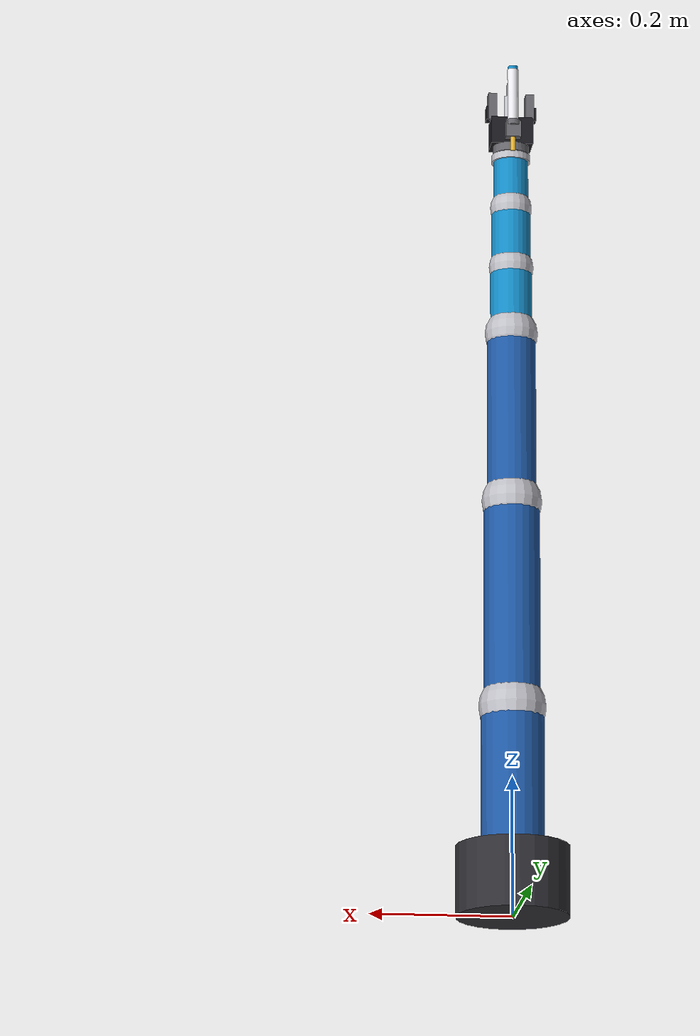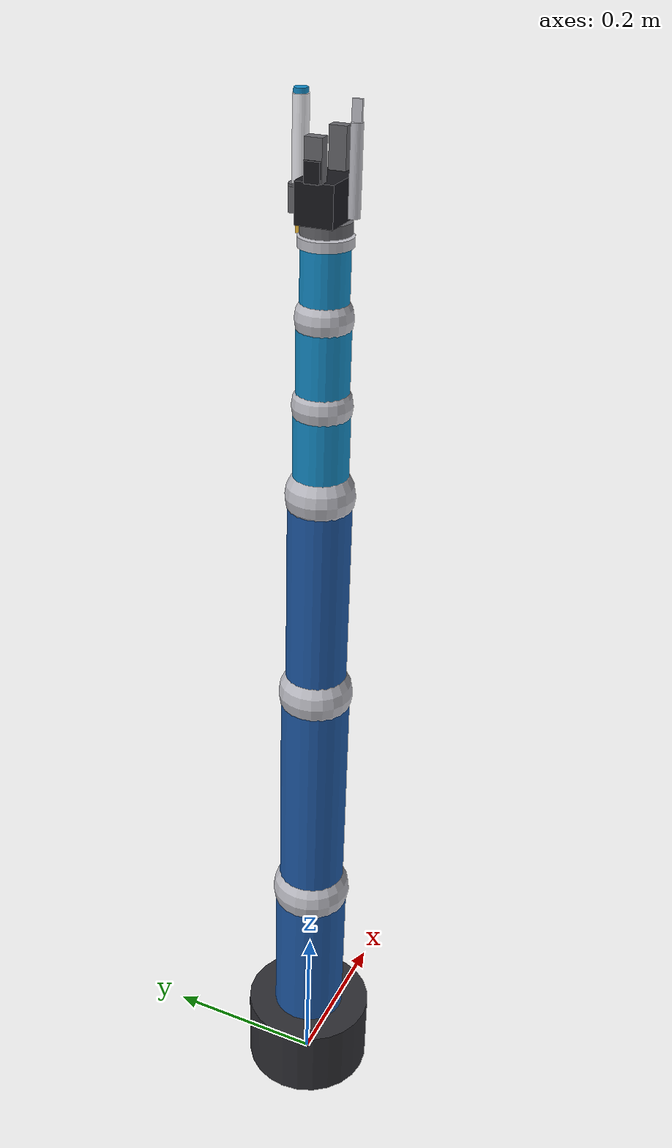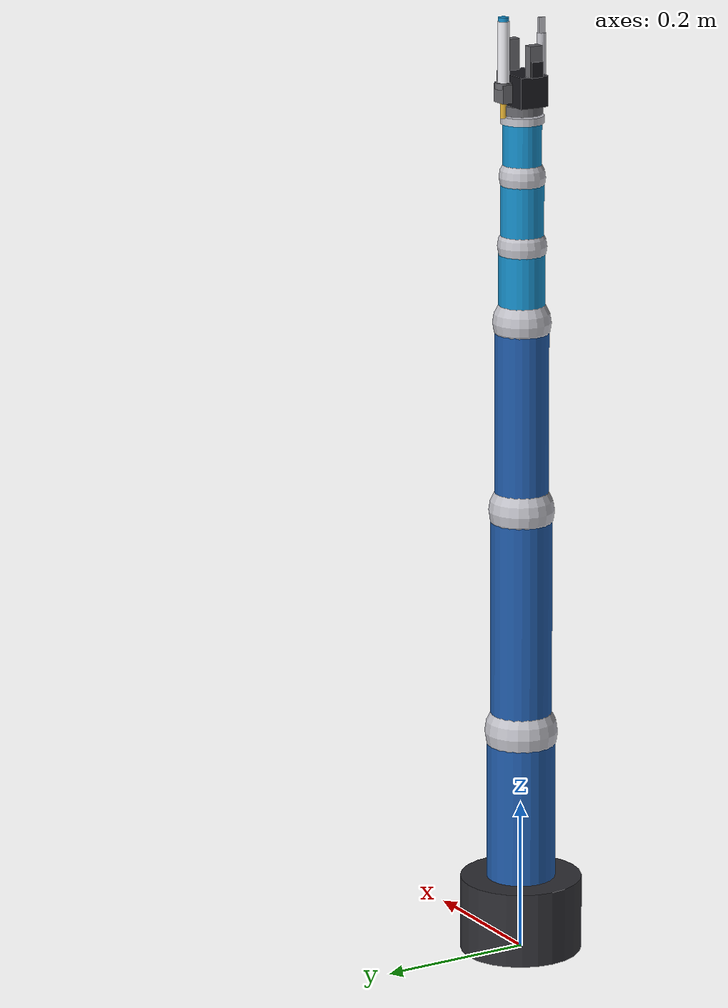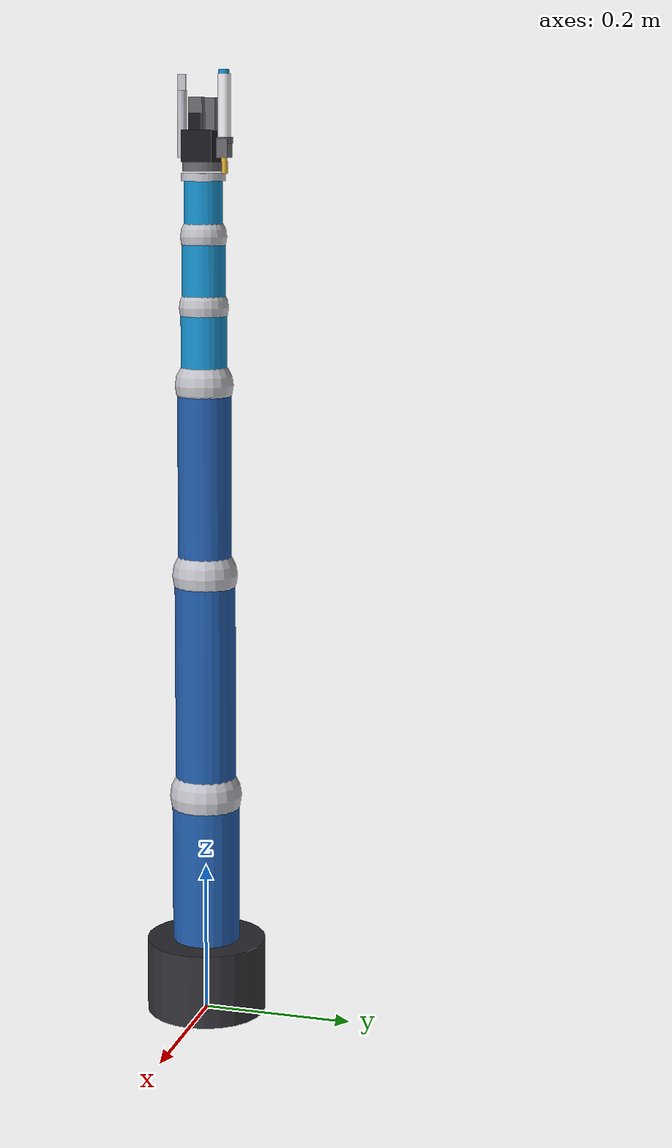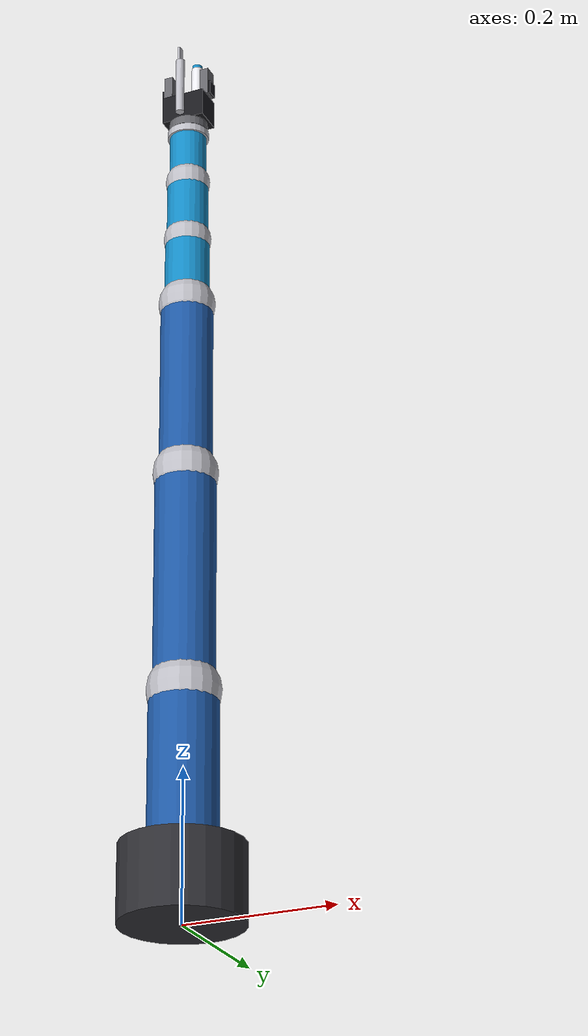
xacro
<?xml version="1.0"?>
<robot xmlns:xacro="http://www.ros.org/wiki/xacro" name="cobot_6dof">

  <xacro:include filename="$(find cobot_description)/urdf/materials.xacro"/>

  <!-- ============================================================
       PROPERTIES — DH-derived link lengths and geometry
       ============================================================ -->
  <xacro:property name="PI" value="3.14159265358979"/>

  <!-- Link lengths (metres) -->
  <xacro:property name="base_height"     value="0.100"/>
  <xacro:property name="base_radius"     value="0.080"/>
  <xacro:property name="link1_length"    value="0.200"/>  <!-- Shoulder -->
  <xacro:property name="link1_radius"    value="0.045"/>
  <xacro:property name="link2_length"    value="0.300"/>  <!-- Upper arm -->
  <xacro:property name="link2_radius"    value="0.040"/>
  <xacro:property name="link3_length"    value="0.250"/>  <!-- Forearm -->
  <xacro:property name="link3_radius"    value="0.035"/>
  <xacro:property name="link4_length"    value="0.100"/>  <!-- Wrist 1 -->
  <xacro:property name="link4_radius"    value="0.030"/>
  <xacro:property name="link5_length"    value="0.090"/>  <!-- Wrist 2 -->
  <xacro:property name="link5_radius"    value="0.028"/>
  <xacro:property name="link6_length"    value="0.070"/>  <!-- Tool flange -->
  <xacro:property name="link6_radius"    value="0.025"/>

  <!-- Joint limits (radians) -->
  <xacro:property name="j1_limit"  value="3.14159"/>   <!-- ±180° base rotation -->
  <xacro:property name="j2_limit"  value="2.35619"/>   <!-- ±135° shoulder -->
  <xacro:property name="j3_limit"  value="2.61799"/>   <!-- ±150° elbow -->
  <xacro:property name="j4_limit"  value="3.14159"/>   <!-- ±180° wrist roll -->
  <xacro:property name="j5_limit"  value="2.09440"/>   <!-- ±120° wrist pitch -->
  <xacro:property name="j6_limit"  value="3.14159"/>   <!-- ±180° tool rotation -->

  <!-- Effort and velocity limits -->
  <xacro:property name="j1_effort"   value="150.0"/>
  <xacro:property name="j2_effort"   value="150.0"/>
  <xacro:property name="j3_effort"   value="100.0"/>
  <xacro:property name="j4_effort"   value="50.0"/>
  <xacro:property name="j5_effort"   value="50.0"/>
  <xacro:property name="j6_effort"   value="30.0"/>
  <xacro:property name="base_vel"    value="1.57"/>    <!-- rad/s -->
  <xacro:property name="wrist_vel"   value="3.14"/>

  <!-- ============================================================
       LINK MACRO — parametric hollow cylindrical link
       ============================================================ -->
  <xacro:macro name="cobot_link" params="name length radius mass color">
    <link name="${name}">
      <visual>
        <origin xyz="0 0 ${length/2}" rpy="0 0 0"/>
        <geometry>
          <cylinder length="${length}" radius="${radius}"/>
        </geometry>
        <material name="${color}"/>
      </visual>
      <collision>
        <origin xyz="0 0 ${length/2}" rpy="0 0 0"/>
        <geometry>
          <cylinder length="${length}" radius="${radius}"/>
        </geometry>
      </collision>
      <inertial>
        <origin xyz="0 0 ${length/2}" rpy="0 0 0"/>
        <mass value="${mass}"/>
        <!-- Hollow cylinder inertia approximation -->
        <inertia
          ixx="${mass*(3*radius*radius + length*length)/12}"
          iyy="${mass*(3*radius*radius + length*length)/12}"
          izz="${mass*radius*radius/2}"
          ixy="0" ixz="0" iyz="0"/>
      </inertial>
    </link>
  </xacro:macro>

  <!-- Joint cap sphere (visual only, for aesthetics at joints) -->
  <xacro:macro name="joint_sphere" params="name radius color">
    <link name="${name}">
      <visual>
        <origin xyz="0 0 0" rpy="0 0 0"/>
        <geometry><sphere radius="${radius}"/></geometry>
        <material name="${color}"/>
      </visual>
      <collision>
        <origin xyz="0 0 0" rpy="0 0 0"/>
        <geometry><sphere radius="${radius}"/></geometry>
      </collision>
      <inertial>
        <mass value="0.05"/>
        <inertia ixx="0.0001" iyy="0.0001" izz="0.0001" ixy="0" ixz="0" iyz="0"/>
      </inertial>
    </link>
  </xacro:macro>

  <!-- ============================================================
       WORLD / BASE
       ============================================================ -->
  <link name="world"/>

  <joint name="world_to_base" type="fixed">
    <parent link="world"/>
    <child link="base_link"/>
    <origin xyz="0 0 0" rpy="0 0 0"/>
  </joint>

  <!-- Base plate -->
  <link name="base_link">
    <visual>
      <origin xyz="0 0 ${base_height/2}" rpy="0 0 0"/>
      <geometry>
        <cylinder length="${base_height}" radius="${base_radius}"/>
      </geometry>
      <material name="dark_grey"/>
    </visual>
    <collision>
      <origin xyz="0 0 ${base_height/2}" rpy="0 0 0"/>
      <geometry>
        <cylinder length="${base_height}" radius="${base_radius}"/>
      </geometry>
    </collision>
    <inertial>
      <origin xyz="0 0 ${base_height/2}" rpy="0 0 0"/>
      <mass value="3.5"/>
      <inertia ixx="0.0180" iyy="0.0180" izz="0.0320" ixy="0" ixz="0" iyz="0"/>
    </inertial>
  </link>

  <!-- ============================================================
       J1 — Base Rotation (Z-axis)
       ============================================================ -->
  <joint name="joint_1" type="revolute">
    <parent link="base_link"/>
    <child link="link_1"/>
    <origin xyz="0 0 ${base_height}" rpy="0 0 0"/>
    <axis xyz="0 0 1"/>
    <limit lower="${-j1_limit}" upper="${j1_limit}" effort="${j1_effort}" velocity="${base_vel}"/>
    <dynamics damping="0.5" friction="0.1"/>
  </joint>

  <xacro:cobot_link name="link_1" length="${link1_length}" radius="${link1_radius}" mass="1.8" color="cobot_blue"/>

  <!-- J1 joint cap -->
  <joint name="j1_cap_joint" type="fixed">
    <parent link="link_1"/>
    <child link="j1_cap"/>
    <origin xyz="0 0 ${link1_length}" rpy="0 0 0"/>
  </joint>
  <xacro:joint_sphere name="j1_cap" radius="0.048" color="cobot_silver"/>

  <!-- ============================================================
       J2 — Shoulder Lift (Y-axis)
       ============================================================ -->
  <joint name="joint_2" type="revolute">
    <parent link="j1_cap"/>
    <child link="link_2"/>
    <origin xyz="0 0 0" rpy="0 0 0"/>
    <axis xyz="0 1 0"/>
    <limit lower="${-j2_limit}" upper="${j2_limit}" effort="${j2_effort}" velocity="${base_vel}"/>
    <dynamics damping="0.5" friction="0.1"/>
  </joint>

  <xacro:cobot_link name="link_2" length="${link2_length}" radius="${link2_radius}" mass="1.5" color="cobot_blue"/>

  <joint name="j2_cap_joint" type="fixed">
    <parent link="link_2"/>
    <child link="j2_cap"/>
    <origin xyz="0 0 ${link2_length}" rpy="0 0 0"/>
  </joint>
  <xacro:joint_sphere name="j2_cap" radius="0.043" color="cobot_silver"/>

  <!-- ============================================================
       J3 — Elbow (Y-axis)
       ============================================================ -->
  <joint name="joint_3" type="revolute">
    <parent link="j2_cap"/>
    <child link="link_3"/>
    <origin xyz="0 0 0" rpy="0 0 0"/>
    <axis xyz="0 1 0"/>
    <limit lower="${-j3_limit}" upper="${j3_limit}" effort="${j3_effort}" velocity="${base_vel}"/>
    <dynamics damping="0.3" friction="0.08"/>
  </joint>

  <xacro:cobot_link name="link_3" length="${link3_length}" radius="${link3_radius}" mass="1.2" color="cobot_blue"/>

  <joint name="j3_cap_joint" type="fixed">
    <parent link="link_3"/>
    <child link="j3_cap"/>
    <origin xyz="0 0 ${link3_length}" rpy="0 0 0"/>
  </joint>
  <xacro:joint_sphere name="j3_cap" radius="0.038" color="cobot_silver"/>

  <!-- ============================================================
       J4 — Wrist Roll (X-axis)
       ============================================================ -->
  <joint name="joint_4" type="revolute">
    <parent link="j3_cap"/>
    <child link="link_4"/>
    <origin xyz="0 0 0" rpy="0 0 0"/>
    <axis xyz="1 0 0"/>
    <limit lower="${-j4_limit}" upper="${j4_limit}" effort="${j4_effort}" velocity="${wrist_vel}"/>
    <dynamics damping="0.1" friction="0.05"/>
  </joint>

  <xacro:cobot_link name="link_4" length="${link4_length}" radius="${link4_radius}" mass="0.6" color="cobot_accent"/>

  <joint name="j4_cap_joint" type="fixed">
    <parent link="link_4"/>
    <child link="j4_cap"/>
    <origin xyz="0 0 ${link4_length}" rpy="0 0 0"/>
  </joint>
  <xacro:joint_sphere name="j4_cap" radius="0.032" color="cobot_silver"/>

  <!-- ============================================================
       J5 — Wrist Pitch (Y-axis)
       ============================================================ -->
  <joint name="joint_5" type="revolute">
    <parent link="j4_cap"/>
    <child link="link_5"/>
    <origin xyz="0 0 0" rpy="0 0 0"/>
    <axis xyz="0 1 0"/>
    <limit lower="${-j5_limit}" upper="${j5_limit}" effort="${j5_effort}" velocity="${wrist_vel}"/>
    <dynamics damping="0.1" friction="0.05"/>
  </joint>

  <xacro:cobot_link name="link_5" length="${link5_length}" radius="${link5_radius}" mass="0.4" color="cobot_accent"/>

  <joint name="j5_cap_joint" type="fixed">
    <parent link="link_5"/>
    <child link="j5_cap"/>
    <origin xyz="0 0 ${link5_length}" rpy="0 0 0"/>
  </joint>
  <xacro:joint_sphere name="j5_cap" radius="0.030" color="cobot_silver"/>

  <!-- ============================================================
       J6 — Tool Rotation (Z-axis)
       ============================================================ -->
  <joint name="joint_6" type="revolute">
    <parent link="j5_cap"/>
    <child link="link_6"/>
    <origin xyz="0 0 0" rpy="0 0 0"/>
    <axis xyz="0 0 1"/>
    <limit lower="${-j6_limit}" upper="${j6_limit}" effort="${j6_effort}" velocity="${wrist_vel}"/>
    <dynamics damping="0.05" friction="0.02"/>
  </joint>

  <xacro:cobot_link name="link_6" length="${link6_length}" radius="${link6_radius}" mass="0.2" color="cobot_accent"/>

  <!-- Tool flange -->
  <joint name="flange_joint" type="fixed">
    <parent link="link_6"/>
    <child link="tool_flange"/>
    <origin xyz="0 0 ${link6_length}" rpy="0 0 0"/>
  </joint>

  <link name="tool_flange">
    <visual>
      <origin xyz="0 0 0.005" rpy="0 0 0"/>
      <geometry>
        <cylinder length="0.010" radius="0.028"/>
      </geometry>
      <material name="cobot_silver"/>
    </visual>
    <collision>
      <origin xyz="0 0 0.005" rpy="0 0 0"/>
      <geometry>
        <cylinder length="0.010" radius="0.028"/>
      </geometry>
    </collision>
    <inertial>
      <mass value="0.05"/>
      <inertia ixx="0.00001" iyy="0.00001" izz="0.00001" ixy="0" ixz="0" iyz="0"/>
    </inertial>
  </link>

  <!-- ============================================================
       END EFFECTOR — include gripper + pipette assembly
       ============================================================ -->
  <xacro:include filename="$(find cobot_description)/urdf/end_effector.xacro"/>
  <xacro:dual_end_effector parent="tool_flange"/>

  <!-- ============================================================
       TCP — Tool Centre Point frame
       ============================================================ -->
  <joint name="tcp_joint" type="fixed">
    <parent link="tool_flange"/>
    <child link="tcp"/>
    <origin xyz="0 0 0.130" rpy="0 0 0"/>
  </joint>

  <link name="tcp">
    <inertial>
      <mass value="0.001"/>
      <inertia ixx="0.000001" iyy="0.000001" izz="0.000001" ixy="0" ixz="0" iyz="0"/>
    </inertial>
  </link>

  <!-- ============================================================
       GAZEBO / ros2_control INTERFACE TAGS
       ============================================================ -->
  <ros2_control name="cobot_hardware" type="system">
    <hardware>
      <plugin>mock_components/GenericSystem</plugin>
    </hardware>

    <!-- J1 — Base rotation | Harmonic drive | 150 Nm -->
    <joint name="joint_1">
      <command_interface name="position"/>
      <command_interface name="effort"><param name="min">-150</param><param name="max">150</param></command_interface>
      <state_interface name="position"><param name="initial_value">0.0</param></state_interface>
      <state_interface name="velocity"/>
      <state_interface name="effort"/>
    </joint>

    <!-- J2 — Shoulder lift | Harmonic drive | 150 Nm | gravity comp -->
    <joint name="joint_2">
      <command_interface name="position"/>
      <command_interface name="effort"><param name="min">-150</param><param name="max">150</param></command_interface>
      <state_interface name="position"><param name="initial_value">-0.785</param></state_interface>
      <state_interface name="velocity"/>
      <state_interface name="effort"/>
    </joint>

    <!-- J3 — Elbow | Harmonic drive | 100 Nm -->
    <joint name="joint_3">
      <command_interface name="position"/>
      <command_interface name="effort"><param name="min">-100</param><param name="max">100</param></command_interface>
      <state_interface name="position"><param name="initial_value">1.047</param></state_interface>
      <state_interface name="velocity"/>
      <state_interface name="effort"/>
    </joint>

    <!-- J4 — Wrist roll | Mini servo | 50 Nm -->
    <joint name="joint_4">
      <command_interface name="position"/>
      <command_interface name="effort"><param name="min">-50</param><param name="max">50</param></command_interface>
      <state_interface name="position"><param name="initial_value">0.0</param></state_interface>
      <state_interface name="velocity"/>
      <state_interface name="effort"/>
    </joint>

    <!-- J5 — Wrist pitch | Mini servo | 50 Nm -->
    <joint name="joint_5">
      <command_interface name="position"/>
      <command_interface name="effort"><param name="min">-50</param><param name="max">50</param></command_interface>
      <state_interface name="position"><param name="initial_value">0.524</param></state_interface>
      <state_interface name="velocity"/>
      <state_interface name="effort"/>
    </joint>

    <!-- J6 — Tool rotation | Mini servo | 30 Nm -->
    <joint name="joint_6">
      <command_interface name="position"/>
      <command_interface name="effort"><param name="min">-30</param><param name="max">30</param></command_interface>
      <state_interface name="position"><param name="initial_value">0.0</param></state_interface>
      <state_interface name="velocity"/>
      <state_interface name="effort"/>
    </joint>

    <!-- Gripper fingers — prismatic, position only -->
    <joint name="gripper_left_joint">
      <command_interface name="position"/>
      <state_interface name="position"><param name="initial_value">0.0</param></state_interface>
      <state_interface name="velocity"/>
      <state_interface name="effort"/>
    </joint>
    <joint name="gripper_right_joint">
      <command_interface name="position"/>
      <state_interface name="position"><param name="initial_value">0.0</param></state_interface>
      <state_interface name="velocity"/>
      <state_interface name="effort"/>
    </joint>

    <!-- Pipette plunger — prismatic, position + effort -->
    <joint name="pipette_plunger_joint">
      <command_interface name="position"/>
      <command_interface name="effort"><param name="min">-5</param><param name="max">5</param></command_interface>
      <state_interface name="position"><param name="initial_value">0.0</param></state_interface>
      <state_interface name="velocity"/>
      <state_interface name="effort"/>
    </joint>

    <!-- Z-axis linear actuator — moves whole pipette up/down -->
    <joint name="pipette_z_joint">
      <command_interface name="position"/>
      <command_interface name="effort"><param name="min">-10</param><param name="max">10</param></command_interface>
      <state_interface name="position"><param name="initial_value">0.0</param></state_interface>
      <state_interface name="velocity"/>
      <state_interface name="effort"/>
    </joint>

    <!-- Tip ejector collar — single-shot prismatic -->
    <joint name="pipette_eject_joint">
      <command_interface name="position"/>
      <command_interface name="effort"><param name="min">-8</param><param name="max">8</param></command_interface>
      <state_interface name="position"><param name="initial_value">0.0</param></state_interface>
      <state_interface name="velocity"/>
      <state_interface name="effort"/>
    </joint>

    <!-- Surgical jaw — revolute, effort + position -->
    <joint name="surgical_jaw_joint">
      <command_interface name="position"/>
      <command_interface name="effort"><param name="min">-5</param><param name="max">5</param></command_interface>
      <state_interface name="position"><param name="initial_value">0.0</param></state_interface>
      <state_interface name="velocity"/>
      <state_interface name="effort"/>
    </joint>

  </ros2_control>

</robot>

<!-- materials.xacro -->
<robot xmlns:xacro="http://www.ros.org/wiki/xacro">

  <material name="cobot_blue">
    <color rgba="0.12 0.35 0.65 1.0"/>
  </material>

  <material name="cobot_accent">
    <color rgba="0.08 0.55 0.78 1.0"/>
  </material>

  <material name="cobot_silver">
    <color rgba="0.75 0.75 0.78 1.0"/>
  </material>

  <material name="dark_grey">
    <color rgba="0.18 0.18 0.20 1.0"/>
  </material>

  <material name="gripper_grey">
    <color rgba="0.40 0.40 0.42 1.0"/>
  </material>

  <material name="gripper_black">
    <color rgba="0.10 0.10 0.12 1.0"/>
  </material>

  <material name="pipette_white">
    <color rgba="0.92 0.92 0.94 1.0"/>
  </material>

  <material name="pipette_tip">
    <color rgba="0.90 0.70 0.20 1.0"/>
  </material>

  <material name="red_indicator">
    <color rgba="0.85 0.15 0.10 1.0"/>
  </material>

  <material name="green_indicator">
    <color rgba="0.10 0.75 0.20 1.0"/>
  </material>

</robot>

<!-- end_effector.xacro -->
<robot xmlns:xacro="http://www.ros.org/wiki/xacro">

  <xacro:macro name="dual_end_effector" params="parent">

    <!-- ── QUICK-SWAP MOUNT ──────────────────────────────────── -->
    <joint name="quickswap_joint" type="fixed">
      <parent link="${parent}"/>
      <child link="quickswap_mount"/>
      <origin xyz="0 0 0.012" rpy="0 0 0"/>
    </joint>

    <link name="quickswap_mount">
      <visual>
        <origin xyz="0 0 0.006" rpy="0 0 0"/>
        <geometry>
          <cylinder length="0.012" radius="0.026"/>
        </geometry>
        <material name="gripper_grey"/>
      </visual>
      <collision>
        <origin xyz="0 0 0.006" rpy="0 0 0"/>
        <geometry><cylinder length="0.012" radius="0.026"/></geometry>
      </collision>
      <inertial>
        <mass value="0.08"/>
        <inertia ixx="0.00002" iyy="0.00002" izz="0.00002" ixy="0" ixz="0" iyz="0"/>
      </inertial>
    </link>

    <!-- ── GRIPPER PALM ──────────────────────────────────────── -->
    <joint name="gripper_palm_joint" type="fixed">
      <parent link="quickswap_mount"/>
      <child link="gripper_palm"/>
      <origin xyz="0 0 0.012" rpy="0 0 0"/>
    </joint>

    <link name="gripper_palm">
      <visual>
        <origin xyz="0 0 0.020" rpy="0 0 0"/>
        <geometry>
          <box size="0.060 0.040 0.040"/>
        </geometry>
        <material name="gripper_black"/>
      </visual>
      <collision>
        <origin xyz="0 0 0.020" rpy="0 0 0"/>
        <geometry><box size="0.060 0.040 0.040"/></geometry>
      </collision>
      <inertial>
        <mass value="0.15"/>
        <inertia ixx="0.0001" iyy="0.0001" izz="0.0001" ixy="0" ixz="0" iyz="0"/>
      </inertial>
    </link>

    <!-- ── GRIPPER FINGER LEFT ──────────────────────────────── -->
    <joint name="gripper_left_joint" type="prismatic">
      <parent link="gripper_palm"/>
      <child link="gripper_finger_left"/>
      <origin xyz="-0.015 0 0.040" rpy="0 0 0"/>
      <axis xyz="1 0 0"/>
      <limit lower="-0.025" upper="0.000" effort="20.0" velocity="0.05"/>
      <dynamics damping="0.5" friction="0.1"/>
    </joint>

    <link name="gripper_finger_left">
      <visual>
        <origin xyz="-0.012 0 0.020" rpy="0 0 0"/>
        <geometry>
          <box size="0.012 0.018 0.040"/>
        </geometry>
        <material name="gripper_grey"/>
      </visual>
      <collision>
        <origin xyz="-0.012 0 0.020" rpy="0 0 0"/>
        <geometry><box size="0.012 0.018 0.040"/></geometry>
      </collision>
      <inertial>
        <mass value="0.04"/>
        <inertia ixx="0.000005" iyy="0.000005" izz="0.000005" ixy="0" ixz="0" iyz="0"/>
      </inertial>
    </link>

    <!-- Finger left tip (rubber pad) -->
    <joint name="finger_left_tip_joint" type="fixed">
      <parent link="gripper_finger_left"/>
      <child link="finger_left_tip"/>
      <origin xyz="-0.018 0 0.010" rpy="0 0 0"/>
    </joint>

    <link name="finger_left_tip">
      <visual>
        <origin xyz="0 0 0" rpy="0 0 0"/>
        <geometry><box size="0.006 0.016 0.020"/></geometry>
        <material name="gripper_black"/>
      </visual>
      <collision>
        <origin xyz="0 0 0" rpy="0 0 0"/>
        <geometry><box size="0.006 0.016 0.020"/></geometry>
      </collision>
      <inertial>
        <mass value="0.005"/>
        <inertia ixx="0.000001" iyy="0.000001" izz="0.000001" ixy="0" ixz="0" iyz="0"/>
      </inertial>
    </link>

    <!-- ── GRIPPER FINGER RIGHT ─────────────────────────────── -->
    <joint name="gripper_right_joint" type="prismatic">
      <parent link="gripper_palm"/>
      <child link="gripper_finger_right"/>
      <origin xyz="0.015 0 0.040" rpy="0 0 0"/>
      <axis xyz="-1 0 0"/>
      <limit lower="-0.025" upper="0.000" effort="20.0" velocity="0.05"/>
      <dynamics damping="0.5" friction="0.1"/>
      <mimic joint="gripper_left_joint" multiplier="1.0" offset="0.0"/>
    </joint>

    <link name="gripper_finger_right">
      <visual>
        <origin xyz="0.012 0 0.020" rpy="0 0 0"/>
        <geometry>
          <box size="0.012 0.018 0.040"/>
        </geometry>
        <material name="gripper_grey"/>
      </visual>
      <collision>
        <origin xyz="0.012 0 0.020" rpy="0 0 0"/>
        <geometry><box size="0.012 0.018 0.040"/></geometry>
      </collision>
      <inertial>
        <mass value="0.04"/>
        <inertia ixx="0.000005" iyy="0.000005" izz="0.000005" ixy="0" ixz="0" iyz="0"/>
      </inertial>
    </link>

    <joint name="finger_right_tip_joint" type="fixed">
      <parent link="gripper_finger_right"/>
      <child link="finger_right_tip"/>
      <origin xyz="0.018 0 0.010" rpy="0 0 0"/>
    </joint>

    <link name="finger_right_tip">
      <visual>
        <origin xyz="0 0 0" rpy="0 0 0"/>
        <geometry><box size="0.006 0.016 0.020"/></geometry>
        <material name="gripper_black"/>
      </visual>
      <collision>
        <origin xyz="0 0 0" rpy="0 0 0"/>
        <geometry><box size="0.006 0.016 0.020"/></geometry>
      </collision>
      <inertial>
        <mass value="0.005"/>
        <inertia ixx="0.000001" iyy="0.000001" izz="0.000001" ixy="0" ixz="0" iyz="0"/>
      </inertial>
    </link>

    <joint name="pipette_z_joint" type="prismatic">
      <parent link="gripper_palm"/>
      <child link="pipette_z_carriage"/>
      <origin xyz="0 0.028 0.005" rpy="0 0 0"/>
      <axis xyz="0 0 1"/>
      <limit lower="-0.030" upper="0.000" effort="10.0" velocity="0.020"/>
      <dynamics damping="0.8" friction="0.05"/>
    </joint>

    <!-- Z-carriage (structural housing for the linear actuator) -->
    <link name="pipette_z_carriage">
      <visual>
        <origin xyz="0 0 0.012" rpy="0 0 0"/>
        <geometry>
          <box size="0.022 0.014 0.024"/>
        </geometry>
        <material name="gripper_grey"/>
      </visual>
      <collision>
        <origin xyz="0 0 0.012" rpy="0 0 0"/>
        <geometry><box size="0.022 0.014 0.024"/></geometry>
      </collision>
      <inertial>
        <mass value="0.025"/>
        <inertia ixx="0.000005" iyy="0.000005" izz="0.000002" ixy="0" ixz="0" iyz="0"/>
      </inertial>
    </link>

    <!-- ── PIPETTE BODY (mounted on Z-carriage) ─────────────── -->
    <joint name="pipette_body_joint" type="fixed">
      <parent link="pipette_z_carriage"/>
      <child link="pipette_body"/>
      <origin xyz="0 0 0.024" rpy="0 0 0"/>
    </joint>

    <link name="pipette_body">
      <visual>
        <origin xyz="0 0 0.040" rpy="0 0 0"/>
        <geometry>
          <cylinder length="0.080" radius="0.008"/>
        </geometry>
        <material name="pipette_white"/>
      </visual>
      <collision>
        <origin xyz="0 0 0.040" rpy="0 0 0"/>
        <geometry><cylinder length="0.080" radius="0.008"/></geometry>
      </collision>
      <inertial>
        <mass value="0.030"/>
        <inertia ixx="0.00001" iyy="0.00001" izz="0.000002" ixy="0" ixz="0" iyz="0"/>
      </inertial>
    </link>

    <joint name="pipette_plunger_joint" type="prismatic">
      <parent link="pipette_body"/>
      <child link="pipette_plunger"/>
      <origin xyz="0 0 0.075" rpy="0 0 0"/>
      <axis xyz="0 0 1"/>
      <limit lower="-0.020" upper="0.000" effort="5.0" velocity="0.010"/>
      <dynamics damping="0.2" friction="0.05"/>
    </joint>

    <link name="pipette_plunger">
      <visual>
        <origin xyz="0 0 0.005" rpy="0 0 0"/>
        <geometry>
          <cylinder length="0.010" radius="0.007"/>
        </geometry>
        <material name="cobot_accent"/>
      </visual>
      <collision>
        <origin xyz="0 0 0.005" rpy="0 0 0"/>
        <geometry><cylinder length="0.010" radius="0.007"/></geometry>
      </collision>
      <inertial>
        <mass value="0.008"/>
        <inertia ixx="0.000001" iyy="0.000001" izz="0.000001" ixy="0" ixz="0" iyz="0"/>
      </inertial>
    </link>

    <!-- ── PIPETTE TIP (seated position) ────────────────────────
         Represents a standard 200 µL polypropylene tip.
         Amber/yellow colour matches common lab tip convention.  -->
    <joint name="pipette_tip_joint" type="fixed">
      <parent link="pipette_body"/>
      <child link="pipette_tip"/>
      <origin xyz="0 0 0.000" rpy="0 0 0"/>
    </joint>

    <link name="pipette_tip">
      <visual>
        <origin xyz="0 0 -0.022" rpy="0 0 0"/>
        <geometry>
          <cylinder length="0.044" radius="0.004"/>
        </geometry>
        <material name="pipette_tip"/>
      </visual>
      <collision>
        <origin xyz="0 0 -0.022" rpy="0 0 0"/>
        <geometry><cylinder length="0.044" radius="0.004"/></geometry>
      </collision>
      <inertial>
        <mass value="0.004"/>
        <inertia ixx="0.000001" iyy="0.000001" izz="0.000001" ixy="0" ixz="0" iyz="0"/>
      </inertial>
    </link>

    <joint name="pipette_eject_joint" type="prismatic">
      <parent link="pipette_body"/>
      <child link="tip_ejector_collar"/>
      <origin xyz="0 0 0.002" rpy="0 0 0"/>
      <axis xyz="0 0 -1"/>
      <limit lower="0.000" upper="0.012" effort="8.0" velocity="0.050"/>
      <dynamics damping="0.3" friction="0.02"/>
    </joint>

    <link name="tip_ejector_collar">
      <visual>
        <origin xyz="0 0 -0.004" rpy="0 0 0"/>
        <geometry>
          <!-- Ring collar: outer radius slightly larger than body -->
          <cylinder length="0.008" radius="0.011"/>
        </geometry>
        <material name="gripper_grey"/>
      </visual>
      <collision>
        <origin xyz="0 0 -0.004" rpy="0 0 0"/>
        <geometry><cylinder length="0.008" radius="0.011"/></geometry>
      </collision>
      <inertial>
        <mass value="0.006"/>
        <inertia ixx="0.000001" iyy="0.000001" izz="0.000001" ixy="0" ixz="0" iyz="0"/>
      </inertial>
    </link>

    <!-- ── PIPETTE TCP (liquid contact point) -->
    <joint name="pipette_tcp_joint" type="fixed">
      <parent link="pipette_tip"/>
      <child link="pipette_tcp"/>
      <origin xyz="0 0 0.036" rpy="0 0 0"/>
    </joint>

    <link name="pipette_tcp">
      <inertial>
        <mass value="0.001"/>
        <inertia ixx="0.000001" iyy="0.000001" izz="0.000001" ixy="0" ixz="0" iyz="0"/>
      </inertial>
    </link>

    <!-- ── TIP DETECTION SENSOR (optical, on palm) ───────────── -->
    <!-- Models the IR presence sensor that confirms tip is seated -->
    <joint name="tip_sensor_joint" type="fixed">
      <parent link="gripper_palm"/>
      <child link="tip_sensor"/>
      <origin xyz="0 0.028 0.085" rpy="0 0 0"/>
    </joint>

    <link name="tip_sensor">
      <visual>
        <origin xyz="0 0 0" rpy="0 0 0"/>
        <geometry><sphere radius="0.003"/></geometry>
        <material name="red_indicator"/>
      </visual>
      <collision>
        <origin xyz="0 0 0" rpy="0 0 0"/>
        <geometry><sphere radius="0.003"/></geometry>
      </collision>
      <inertial>
        <mass value="0.001"/>
        <inertia ixx="0.000001" iyy="0.000001" izz="0.000001" ixy="0" ixz="0" iyz="0"/>
      </inertial>
    </link>

    <!-- ── MODE 3: SURGICAL TOOL MOCK (Articulus style) ─────── -->
    <!-- Detachable surgical instrument: dissector / cautery dummy -->
    <!-- Mounted on opposite side of palm from pipette (Y negative) -->
    <joint name="surgical_tool_joint" type="fixed">
      <parent link="gripper_palm"/>
      <child link="surgical_tool_body"/>
      <origin xyz="0 -0.028 0.005" rpy="0 0 0"/>
    </joint>

    <link name="surgical_tool_body">
      <visual>
        <origin xyz="0 0 0.042" rpy="0 0 0"/>
        <geometry>
          <cylinder length="0.084" radius="0.006"/>
        </geometry>
        <material name="cobot_silver"/>
      </visual>
      <collision>
        <origin xyz="0 0 0.042" rpy="0 0 0"/>
        <geometry><cylinder length="0.084" radius="0.006"/></geometry>
      </collision>
      <inertial>
        <mass value="0.025"/>
        <inertia ixx="0.00001" iyy="0.00001" izz="0.000001" ixy="0" ixz="0" iyz="0"/>
      </inertial>
    </link>

    <!-- Surgical jaw — proximal link -->
    <joint name="surgical_jaw_joint" type="revolute">
      <parent link="surgical_tool_body"/>
      <child link="surgical_jaw"/>
      <origin xyz="0 0 0.084" rpy="0 0 0"/>
      <axis xyz="1 0 0"/>
      <limit lower="-0.30" upper="0.30" effort="5.0" velocity="0.5"/>
      <dynamics damping="0.05" friction="0.01"/>
    </joint>

    <link name="surgical_jaw">
      <visual>
        <origin xyz="0 0 0.010" rpy="0 0 0"/>
        <geometry>
          <box size="0.003 0.010 0.020"/>
        </geometry>
        <material name="cobot_silver"/>
      </visual>
      <collision>
        <origin xyz="0 0 0.010" rpy="0 0 0"/>
        <geometry><box size="0.003 0.010 0.020"/></geometry>
      </collision>
      <inertial>
        <mass value="0.005"/>
        <inertia ixx="0.000001" iyy="0.000001" izz="0.000001" ixy="0" ixz="0" iyz="0"/>
      </inertial>
    </link>

    <!-- Surgical tool TCP -->
    <joint name="surgical_tcp_joint" type="fixed">
      <parent link="surgical_jaw"/>
      <child link="surgical_tcp"/>
      <origin xyz="0 0 0.022" rpy="0 0 0"/>
    </joint>

    <link name="surgical_tcp">
      <inertial>
        <mass value="0.001"/>
        <inertia ixx="0.000001" iyy="0.000001" izz="0.000001" ixy="0" ixz="0" iyz="0"/>
      </inertial>
    </link>

    <!-- Cautery activation indicator (LED mock — green sphere) -->
    <joint name="cautery_led_joint" type="fixed">
      <parent link="surgical_tool_body"/>
      <child link="cautery_led"/>
      <origin xyz="0 0 0.010" rpy="0 0 0"/>
    </joint>

    <link name="cautery_led">
      <visual>
        <origin xyz="0 0 0" rpy="0 0 0"/>
        <geometry><sphere radius="0.003"/></geometry>
        <material name="green_indicator"/>
      </visual>
      <collision>
        <origin xyz="0 0 0" rpy="0 0 0"/>
        <geometry><sphere radius="0.003"/></geometry>
      </collision>
      <inertial>
        <mass value="0.001"/>
        <inertia ixx="0.000001" iyy="0.000001" izz="0.000001" ixy="0" ixz="0" iyz="0"/>
      </inertial>
    </link>

  </xacro:macro>

</robot>
